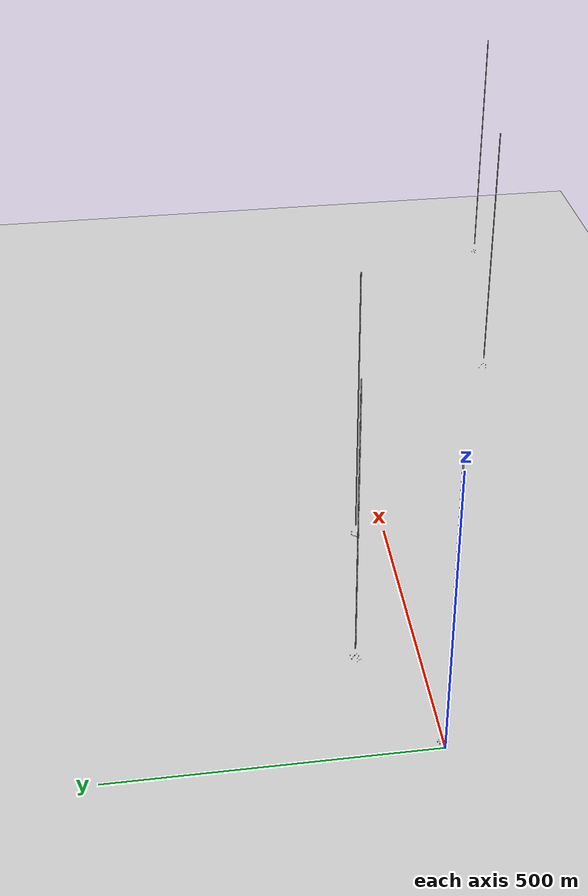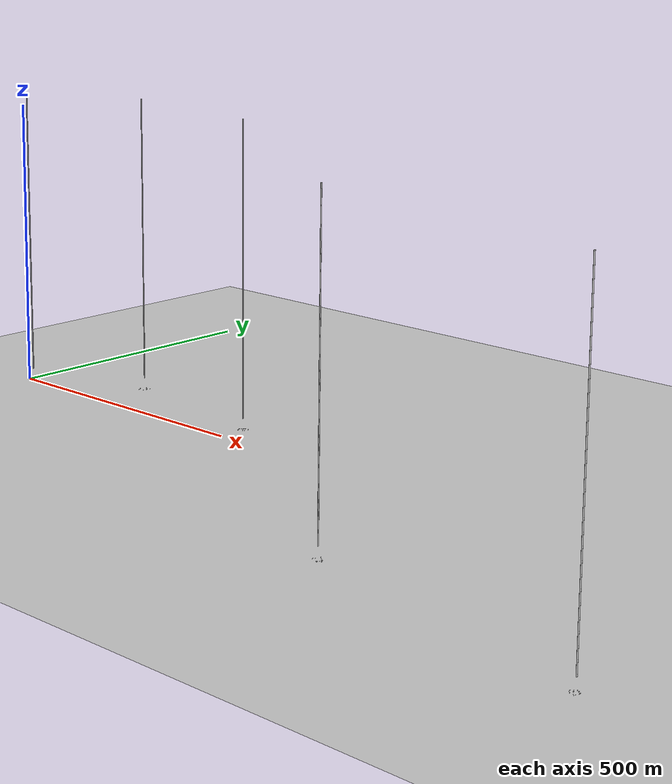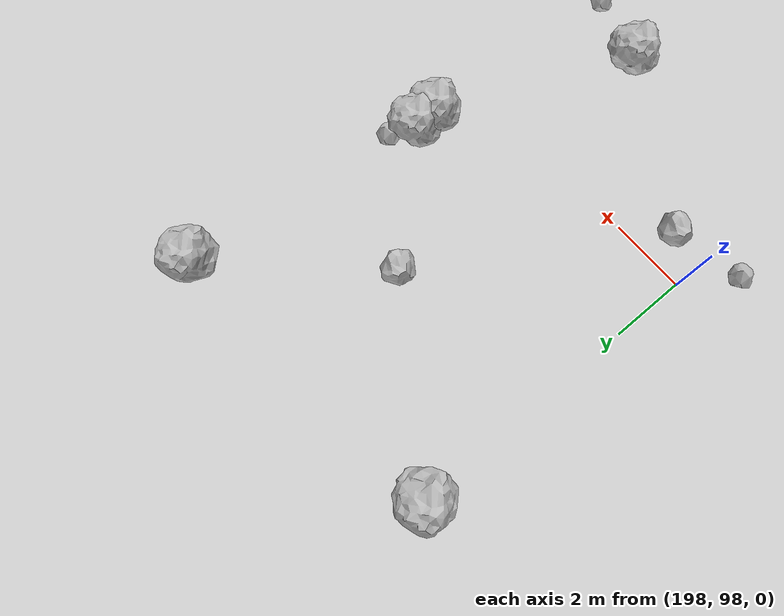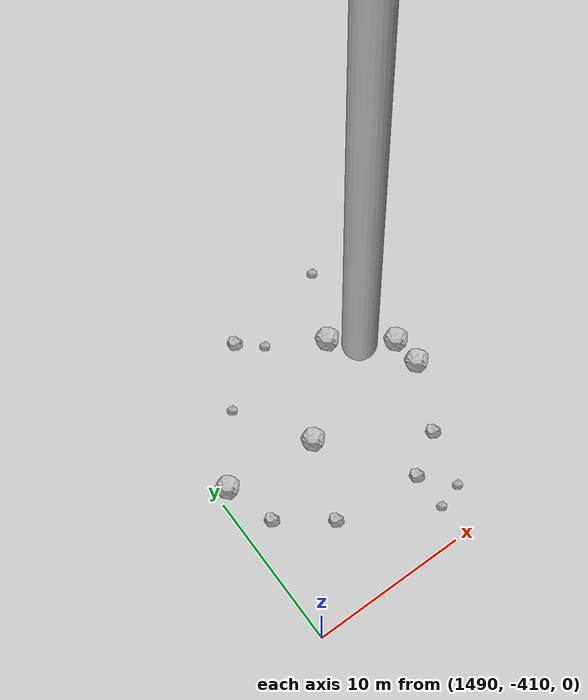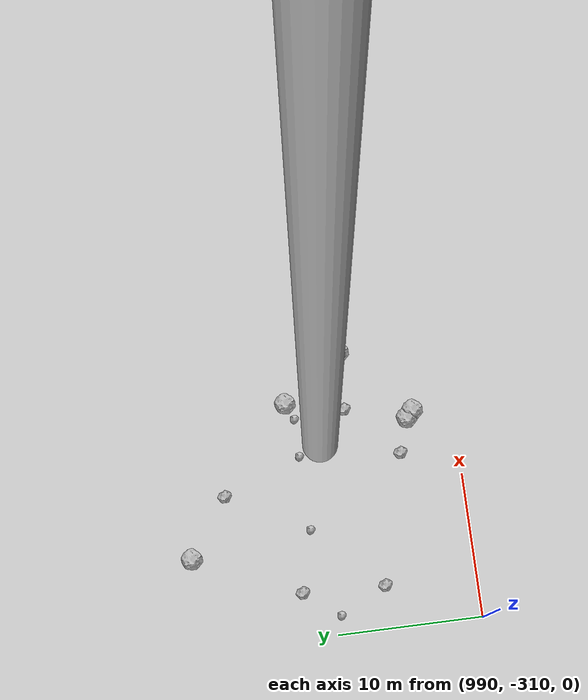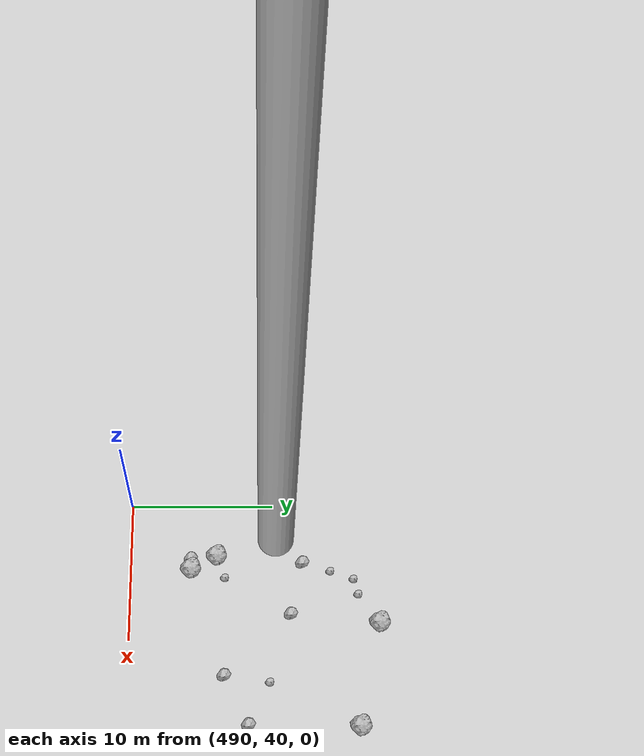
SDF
<?xml version="1.0" ?>
<sdf version="1.6">
  <world name="default">

    <include>
      <uri>model://custom_ground</uri>
    </include>

    <include>
      <uri>model://sun</uri>
    </include>

    <spherical_coordinates>
      <surface_model>EARTH_WGS84</surface_model>
      <latitude_deg>38.161479</latitude_deg>
      <longitude_deg>-122.454630</longitude_deg>
      <elevation>488.0</elevation>
      <heading_deg>90</heading_deg>
    </spherical_coordinates>

    <model name="rock1_0_0">
      <include>
        <uri>model://rock1</uri>
        <pose>8.015768669374172 1.3407868493608888 0.5 0 0 0</pose>
      </include>
    </model>
    <model name="rock1_0_1">
      <include>
        <uri>model://rock1</uri>
        <pose>15.714804929505553 -5.548781003638014 0.5 0 0 0</pose>
      </include>
    </model>
    <model name="rock1_0_2">
      <include>
        <uri>model://rock1</uri>
        <pose>9.458237571870509 6.936402348233656 0.5 0 0 0</pose>
      </include>
    </model>
    <model name="rock1_0_3">
      <include>
        <uri>model://rock1</uri>
        <pose>16.046906638428872 1.3896974749482656 0.5 0 0 0</pose>
      </include>
    </model>
    <model name="rock1_0_4">
      <include>
        <uri>model://rock1</uri>
        <pose>13.462877860015272 8.92936853747905 0.5 0 0 0</pose>
      </include>
    </model>
    <model name="rock2_0_0">
      <include>
        <uri>model://rock2</uri>
        <pose>18.975870735272636 -1.0306670074250928 0.3 0 0 0</pose>
      </include>
    </model>
    <model name="rock2_0_1">
      <include>
        <uri>model://rock2</uri>
        <pose>18.900171759347533 -1.8582303039582921 0.3 0 0 0</pose>
      </include>
    </model>
    <model name="rock2_0_2">
      <include>
        <uri>model://rock2</uri>
        <pose>8.629032510181068 5.847374099102467 0.3 0 0 0</pose>
      </include>
    </model>
    <model name="rock2_0_3">
      <include>
        <uri>model://rock2</uri>
        <pose>11.95679343665695 3.3026255498922055 0.3 0 0 0</pose>
      </include>
    </model>
    <model name="rock2_0_4">
      <include>
        <uri>model://rock2</uri>
        <pose>16.82674498617933 -6.223475536453218 0.3 0 0 0</pose>
      </include>
    </model>
    <model name="rock3_0_0">
      <include>
        <uri>model://rock3</uri>
        <pose>10.893426503983418 -6.081670048112211 0.2 0 0 0</pose>
      </include>
    </model>
    <model name="rock3_0_1">
      <include>
        <uri>model://rock3</uri>
        <pose>13.899329314098729 5.597253071957823 0.2 0 0 0</pose>
      </include>
    </model>
    <model name="rock3_0_2">
      <include>
        <uri>model://rock3</uri>
        <pose>7.027330063038688 2.864634296200384 0.2 0 0 0</pose>
      </include>
    </model>
    <model name="rock3_0_3">
      <include>
        <uri>model://rock3</uri>
        <pose>15.387717111561539 4.866608083246835 0.2 0 0 0</pose>
      </include>
    </model>
    <model name="rock3_0_4">
      <include>
        <uri>model://rock3</uri>
        <pose>17.282868318078076 6.76157248564893 0.2 0 0 0</pose>
      </include>
    </model>
    <model name="rock1_1_0">
      <include>
        <uri>model://rock1</uri>
        <pose>203.50135501228837 94.13388716212792 0.5 0 0 0</pose>
      </include>
    </model>
    <model name="rock1_1_1">
      <include>
        <uri>model://rock1</uri>
        <pose>206.1045756409671 106.94418592179717 0.5 0 0 0</pose>
      </include>
    </model>
    <model name="rock1_1_2">
      <include>
        <uri>model://rock1</uri>
        <pose>198.05696419094775 106.01602433802628 0.5 0 0 0</pose>
      </include>
    </model>
    <model name="rock1_1_3">
      <include>
        <uri>model://rock1</uri>
        <pose>205.5164454930423 100.24344074927157 0.5 0 0 0</pose>
      </include>
    </model>
    <model name="rock1_1_4">
      <include>
        <uri>model://rock1</uri>
        <pose>205.5573340979018 99.56524575752346 0.5 0 0 0</pose>
      </include>
    </model>
    <model name="rock2_1_0">
      <include>
        <uri>model://rock2</uri>
        <pose>195.2162060572001 91.49923483416384 0.3 0 0 0</pose>
      </include>
    </model>
    <model name="rock2_1_1">
      <include>
        <uri>model://rock2</uri>
        <pose>190.64636972447238 98.39480939437502 0.3 0 0 0</pose>
      </include>
    </model>
    <model name="rock2_1_2">
      <include>
        <uri>model://rock2</uri>
        <pose>194.32598976377645 95.08534791031539 0.3 0 0 0</pose>
      </include>
    </model>
    <model name="rock2_1_3">
      <include>
        <uri>model://rock2</uri>
        <pose>202.6187825628882 103.11483438844394 0.3 0 0 0</pose>
      </include>
    </model>
    <model name="rock2_1_4">
      <include>
        <uri>model://rock2</uri>
        <pose>199.05368648485694 97.08862931771196 0.3 0 0 0</pose>
      </include>
    </model>
    <model name="rock3_1_0">
      <include>
        <uri>model://rock3</uri>
        <pose>206.21670935355644 93.29609261600513 0.2 0 0 0</pose>
      </include>
    </model>
    <model name="rock3_1_1">
      <include>
        <uri>model://rock3</uri>
        <pose>197.1480234778892 96.66101493761381 0.2 0 0 0</pose>
      </include>
    </model>
    <model name="rock3_1_2">
      <include>
        <uri>model://rock3</uri>
        <pose>205.3196359402125 93.40958505042764 0.2 0 0 0</pose>
      </include>
    </model>
    <model name="rock3_1_3">
      <include>
        <uri>model://rock3</uri>
        <pose>205.7290009256939 100.91599318800161 0.2 0 0 0</pose>
      </include>
    </model>
    <model name="rock3_1_4">
      <include>
        <uri>model://rock3</uri>
        <pose>208.63713281723966 96.27943502190367 0.2 0 0 0</pose>
      </include>
    </model>
    <model name="rock1_2_0">
      <include>
        <uri>model://rock1</uri>
        <pose>494.8534564248974 44.24442621374765 0.5 0 0 0</pose>
      </include>
    </model>
    <model name="rock1_2_1">
      <include>
        <uri>model://rock1</uri>
        <pose>493.8939316177873 46.04941148880219 0.5 0 0 0</pose>
      </include>
    </model>
    <model name="rock1_2_2">
      <include>
        <uri>model://rock1</uri>
        <pose>491.7916253712517 49.861146326930466 0.5 0 0 0</pose>
      </include>
    </model>
    <model name="rock1_2_3">
      <include>
        <uri>model://rock1</uri>
        <pose>506.04148454652943 55.94187332725336 0.5 0 0 0</pose>
      </include>
    </model>
    <model name="rock1_2_4">
      <include>
        <uri>model://rock1</uri>
        <pose>498.7859502225861 57.44303734291577 0.5 0 0 0</pose>
      </include>
    </model>
    <model name="rock2_2_0">
      <include>
        <uri>model://rock2</uri>
        <pose>498.0855618570938 51.28852093661252 0.3 0 0 0</pose>
      </include>
    </model>
    <model name="rock2_2_1">
      <include>
        <uri>model://rock2</uri>
        <pose>493.98684876674014 44.24328478107199 0.3 0 0 0</pose>
      </include>
    </model>
    <model name="rock2_2_2">
      <include>
        <uri>model://rock2</uri>
        <pose>502.47887209391365 46.659268325344144 0.3 0 0 0</pose>
      </include>
    </model>
    <model name="rock2_2_3">
      <include>
        <uri>model://rock2</uri>
        <pose>505.8912754791848 48.356321736396765 0.3 0 0 0</pose>
      </include>
    </model>
    <model name="rock2_2_4">
      <include>
        <uri>model://rock2</uri>
        <pose>494.3074656818848 52.11981709014202 0.3 0 0 0</pose>
      </include>
    </model>
    <model name="rock3_2_0">
      <include>
        <uri>model://rock3</uri>
        <pose>495.43206353294175 46.61701943363936 0.2 0 0 0</pose>
      </include>
    </model>
    <model name="rock3_2_1">
      <include>
        <uri>model://rock3</uri>
        <pose>502.9594895936425 49.776805008254954 0.2 0 0 0</pose>
      </include>
    </model>
    <model name="rock3_2_2">
      <include>
        <uri>model://rock3</uri>
        <pose>496.64217511779503 55.98501393329114 0.2 0 0 0</pose>
      </include>
    </model>
    <model name="rock3_2_3">
      <include>
        <uri>model://rock3</uri>
        <pose>495.52364522279123 55.67276574945688 0.2 0 0 0</pose>
      </include>
    </model>
    <model name="rock3_2_4">
      <include>
        <uri>model://rock3</uri>
        <pose>494.94444529980103 54.046248066298396 0.2 0 0 0</pose>
      </include>
    </model>
    <model name="rock1_3_0">
      <include>
        <uri>model://rock1</uri>
        <pose>1004.4005433419172 -306.66226705950754 0.5 0 0 0</pose>
      </include>
    </model>
    <model name="rock1_3_1">
      <include>
        <uri>model://rock1</uri>
        <pose>1009.6500737639532 -302.5333952133225 0.5 0 0 0</pose>
      </include>
    </model>
    <model name="rock1_3_2">
      <include>
        <uri>model://rock1</uri>
        <pose>1006.4404373544319 -298.34092839381293 0.5 0 0 0</pose>
      </include>
    </model>
    <model name="rock1_3_3">
      <include>
        <uri>model://rock1</uri>
        <pose>996.4400355818524 -290.67096730076963 0.5 0 0 0</pose>
      </include>
    </model>
    <model name="rock1_3_4">
      <include>
        <uri>model://rock1</uri>
        <pose>1004.9003605734395 -307.1325553261976 0.5 0 0 0</pose>
      </include>
    </model>
    <model name="rock2_3_0">
      <include>
        <uri>model://rock2</uri>
        <pose>1002.0147660014717 -305.91724936312363 0.3 0 0 0</pose>
      </include>
    </model>
    <model name="rock2_3_1">
      <include>
        <uri>model://rock2</uri>
        <pose>992.9991864301387 -303.63964740156 0.3 0 0 0</pose>
      </include>
    </model>
    <model name="rock2_3_2">
      <include>
        <uri>model://rock2</uri>
        <pose>1000.473701037587 -293.3931063884598 0.3 0 0 0</pose>
      </include>
    </model>
    <model name="rock2_3_3">
      <include>
        <uri>model://rock2</uri>
        <pose>993.1879332476882 -297.9525593916822 0.3 0 0 0</pose>
      </include>
    </model>
    <model name="rock2_3_4">
      <include>
        <uri>model://rock2</uri>
        <pose>1005.5653969086477 -302.38604632662674 0.3 0 0 0</pose>
      </include>
    </model>
    <model name="rock3_3_0">
      <include>
        <uri>model://rock3</uri>
        <pose>1005.2768763948307 -298.8857369087318 0.2 0 0 0</pose>
      </include>
    </model>
    <model name="rock3_3_1">
      <include>
        <uri>model://rock3</uri>
        <pose>991.3000790749511 -300.4262149652921 0.2 0 0 0</pose>
      </include>
    </model>
    <model name="rock3_3_2">
      <include>
        <uri>model://rock3</uri>
        <pose>1002.6065784218921 -298.90810028292776 0.2 0 0 0</pose>
      </include>
    </model>
    <model name="rock3_3_3">
      <include>
        <uri>model://rock3</uri>
        <pose>997.4118229709327 -299.04868927868347 0.2 0 0 0</pose>
      </include>
    </model>
    <model name="rock3_3_4">
      <include>
        <uri>model://rock3</uri>
        <pose>1009.2685245413661 -299.9893923478444 0.2 0 0 0</pose>
      </include>
    </model>
    <model name="rock1_4_0">
      <include>
        <uri>model://rock1</uri>
        <pose>1496.744402679062 -400.0310576574596 0.5 0 0 0</pose>
      </include>
    </model>
    <model name="rock1_4_1">
      <include>
        <uri>model://rock1</uri>
        <pose>1504.433960716082 -398.05047660847583 0.5 0 0 0</pose>
      </include>
    </model>
    <model name="rock1_4_2">
      <include>
        <uri>model://rock1</uri>
        <pose>1504.6572930411608 -399.8483846724878 0.5 0 0 0</pose>
      </include>
    </model>
    <model name="rock1_4_3">
      <include>
        <uri>model://rock1</uri>
        <pose>1490.8757370433286 -399.33509343357997 0.5 0 0 0</pose>
      </include>
    </model>
    <model name="rock1_4_4">
      <include>
        <uri>model://rock1</uri>
        <pose>1501.103909085364 -395.57132720548975 0.5 0 0 0</pose>
      </include>
    </model>
    <model name="rock2_4_0">
      <include>
        <uri>model://rock2</uri>
        <pose>1491.8106387952723 -402.47924620594716 0.3 0 0 0</pose>
      </include>
    </model>
    <model name="rock2_4_1">
      <include>
        <uri>model://rock2</uri>
        <pose>1494.906741808331 -404.79461340977275 0.3 0 0 0</pose>
      </include>
    </model>
    <model name="rock2_4_2">
      <include>
        <uri>model://rock2</uri>
        <pose>1500.439160641789 -405.4918819475053 0.3 0 0 0</pose>
      </include>
    </model>
    <model name="rock2_4_3">
      <include>
        <uri>model://rock2</uri>
        <pose>1502.8369771379407 -403.8958388458695 0.3 0 0 0</pose>
      </include>
    </model>
    <model name="rock2_4_4">
      <include>
        <uri>model://rock2</uri>
        <pose>1496.4121562512803 -392.42540116652793 0.3 0 0 0</pose>
      </include>
    </model>
    <model name="rock3_4_0">
      <include>
        <uri>model://rock3</uri>
        <pose>1497.7541769653428 -393.66767681600743 0.2 0 0 0</pose>
      </include>
    </model>
    <model name="rock3_4_1">
      <include>
        <uri>model://rock3</uri>
        <pose>1500.5166563014373 -407.9026710733849 0.2 0 0 0</pose>
      </include>
    </model>
    <model name="rock3_4_2">
      <include>
        <uri>model://rock3</uri>
        <pose>1502.0608314988617 -407.42036006768535 0.2 0 0 0</pose>
      </include>
    </model>
    <model name="rock3_4_3">
      <include>
        <uri>model://rock3</uri>
        <pose>1493.833729409012 -395.6851420433095 0.2 0 0 0</pose>
      </include>
    </model>
    <model name="rock3_4_4">
      <include>
        <uri>model://rock3</uri>
        <pose>1502.7365656878499 -391.7317692002179 0.2 0 0 0</pose>
      </include>
    </model>

    <model name="cylinder_1">
      <static>true</static>
      <link name="link">
        <visual name="visual">
          <geometry>
            <cylinder>
              <radius>1</radius>
              <length>500</length>
            </cylinder>
          </geometry>
        </visual>
      </link>
      <pose>10 0 270 0 0 0</pose>
    </model>

    <model name="cylinder_2">
      <static>true</static>
      <link name="link">
        <visual name="visual">
          <geometry>
            <cylinder>
              <radius>1</radius>
              <length>500</length>
            </cylinder>
          </geometry>
        </visual>
      </link>
      <pose>200 100 270 0 0 0</pose>
    </model>

    <model name="cylinder_3">
      <static>true</static>
      <link name="link">
        <visual name="visual">
          <geometry>
            <cylinder>
              <radius>1</radius>
              <length>500</length>
            </cylinder>
          </geometry>
        </visual>
      </link>
      <pose>500 50 270 0 0 0</pose>
    </model>

    <model name="cylinder_4">
      <static>true</static>
      <link name="link">
        <visual name="visual">
          <geometry>
            <cylinder>
              <radius>1</radius>
              <length>500</length>
            </cylinder>
          </geometry>
        </visual>
      </link>
      <pose>1000 -300 270 0 0 0</pose>
    </model>

    <model name="cylinder_5">
      <static>true</static>
      <link name="link">
        <visual name="visual">
          <geometry>
            <cylinder>
              <radius>1</radius>
              <length>500</length>
            </cylinder>
          </geometry>
        </visual>
      </link>
      <pose>1500 -400 270 0 0 0</pose>
    </model>

  </world>
</sdf>

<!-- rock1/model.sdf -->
<sdf version="1.6">
  <model name="rock1">
    <static>true</static> <!-- Set to true if the model should not move -->
    <pose>0 0 0 0 0 0</pose>

    <!--z offset is 0.5 for full scale-->

    <link name="link">
      <collision name="rock1_collision">
        <geometry>
          <mesh>
            <uri>model://meshes/rock1.dae</uri>
          </mesh>
        </geometry>
      </collision>
      <visual name="rock1_visual">
        <geometry>
          <mesh>
            <uri>model://meshes/rock1.dae</uri>
          </mesh>
        </geometry>
        <material>
          <script>
            <uri>model://materials/scripts/sand_pebbles.material</uri>
            <name>custom_ground/Image</name>
          </script>
        </material>
      </visual>
    </link>
  </model>
</sdf>

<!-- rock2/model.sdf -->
<sdf version="1.6">
  <model name="rock2">
    <static>true</static> <!-- Set to true if the model should not move -->
    <pose>0 0 0 0 0 0</pose>

    <!--z offset is 0.3 for full scale-->

    <link name="link">
      <collision name="rock2_collision">
        <geometry>
          <mesh>
            <uri>model://meshes/rock2.dae</uri>
          </mesh>
        </geometry>
      </collision>
      <visual name="rock2_visual">
        <geometry>
          <mesh>
            <uri>model://meshes/rock2.dae</uri>
          </mesh>
        </geometry>
        <material>
          <script>
            <uri>model://materials/scripts/sand_pebbles.material</uri>
            <name>custom_ground/Image</name>
          </script>
        </material>
      </visual>
    </link>
  </model>
</sdf>

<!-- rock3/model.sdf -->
<sdf version="1.6">
  <model name="rock3">
    <static>true</static> <!-- Set to true if the model should not move -->
    <pose>0 0 0 0 0 0</pose>

    <!--z offset is 0.2 for full scale-->

    <link name="link">
      <collision name="rock3_collision">
        <geometry>
          <mesh>
            <uri>model://meshes/rock3.dae</uri>
          </mesh>
        </geometry>
      </collision>
      <visual name="rock3_visual">
        <geometry>
          <mesh>
            <uri>model://meshes/rock3.dae</uri>
          </mesh>
        </geometry>
        <material>
          <script>
            <uri>model://materials/scripts/sand_pebbles.material</uri>
            <name>custom_ground/Image</name>
          </script>
        </material>
      </visual>
    </link>
  </model>
</sdf>

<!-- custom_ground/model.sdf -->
<sdf version="1.6">
  <model name="custom_ground">
    <static>true</static> <!-- Ground is static and immovable -->
    <link name="ground_link">
      <pose>240 0 0 0 0 0</pose> <!-- Position and orientation relative to the world -->
      <!-- Visual Representation -->
      <visual name="ground_visual">
        <geometry>
          <plane>
            <normal>0 0 1</normal> <!-- Upward facing plane -->
            <size>500 500</size> <!-- Size of the plane -->
          </plane>
        </geometry>
        <material>
          <script>
            <uri>model://materials/scripts/sand_pebbles.material</uri>
            <name>custom_ground/Image</name>
          </script>
        </material>
      </visual>

      <!-- Collision Representation -->
      <collision name="ground_collision">
        <geometry>
          <plane>
            <normal>0 0 1</normal>
            <size>100 100</size>
          </plane>
        </geometry>
      </collision>

    </link>
  </model>
</sdf>
